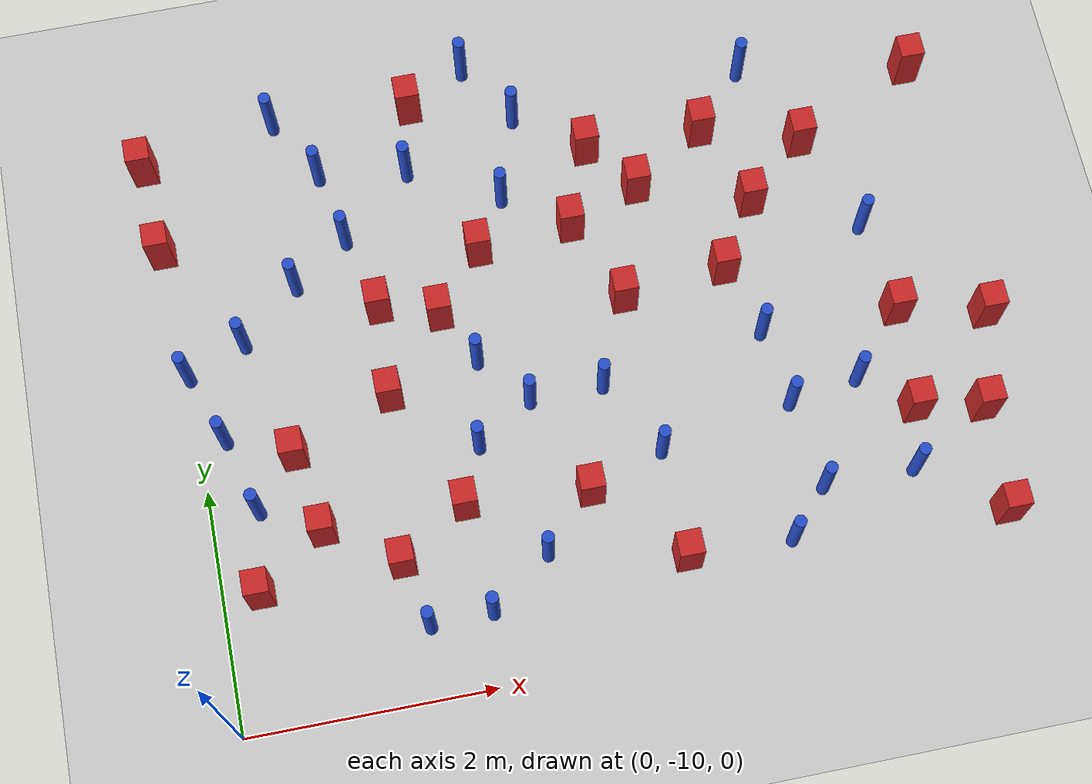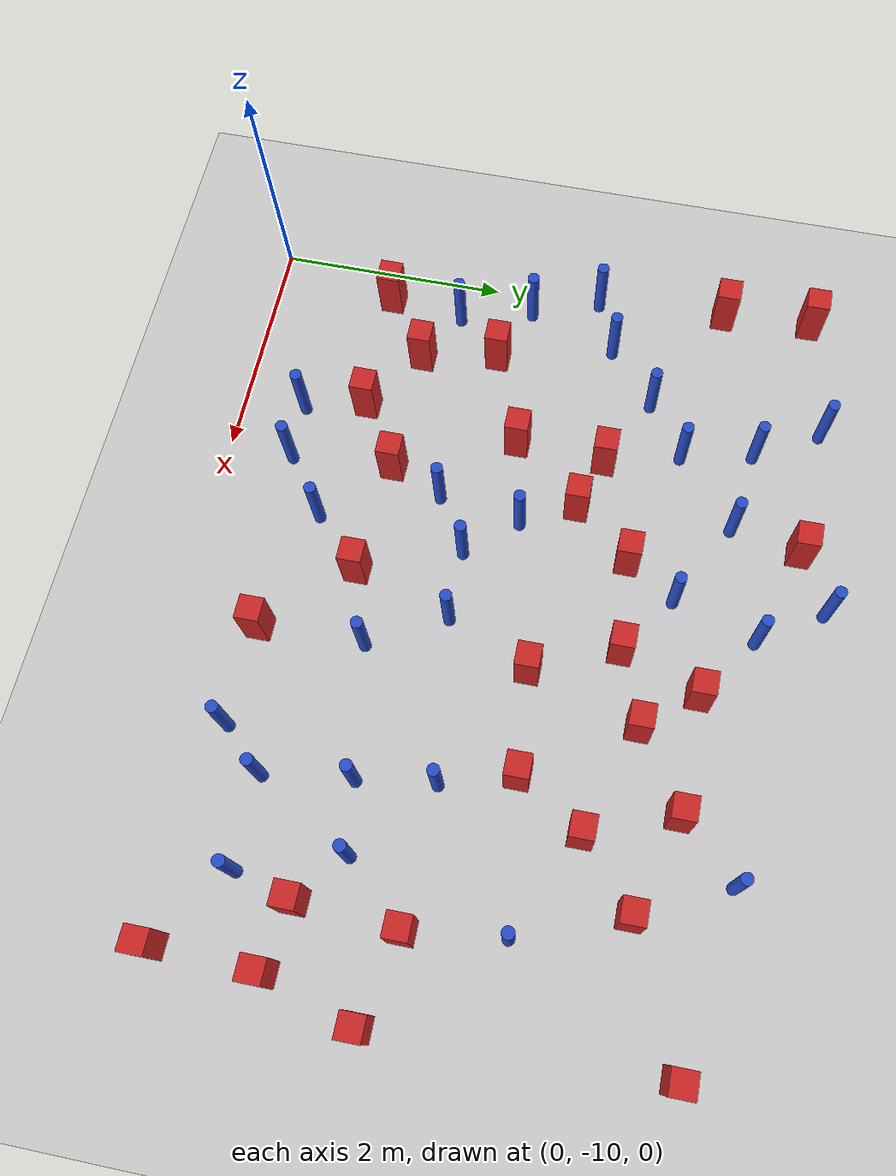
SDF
<sdf version="1.6">
 <world name="default">
  <model name="ground_plane">
   <static>1</static>
   <link name="link">
    <collision name="collision">
     <geometry><plane><normal>0 0 1</normal><size>100 100</size></plane></geometry>
     <surface><friction><ode><mu>100</mu><mu2>50</mu2></ode></friction></surface>
    </collision>
    <visual name="visual">
     <cast_shadows>0</cast_shadows>
     <geometry><plane><normal>0 0 1</normal><size>100 100</size></plane></geometry>
     <material>
      <ambient>1.0 1.0 1.0 1.0</ambient>
      <diffuse>0.8 0.8 0.8 1.0</diffuse>
      <specular>0.01 0.01 0.01 1.000000</specular>
     </material>
    </visual>
   </link>
  </model>
  <model name="pole_obstacle1">
   <static>true</static>
   <pose>5.66179896076 -6.79059327364 -9.47619616065e-06 5.49618799737e-07 2.36310414037e-07 -1.55090534814e-07</pose>
   <link name="link">
    <pose>0 0 0.3 0 -0 0</pose>
    <inertial>
     <mass>1</mass>
     <inertia><ixx>0.145833</ixx><ixy>0</ixy><ixz>0</ixz><iyy>0.145833</iyy><iyz>0</iyz><izz>0.125</izz></inertia>
    </inertial>
    <collision name="collision">
     <geometry><cylinder><radius>0.05</radius><length>.6</length></cylinder></geometry>
    </collision>
    <visual name="visual">
     <geometry><cylinder><radius>0.05</radius><length>.6</length></cylinder></geometry>
     <material>
      <script><name>Gazebo/Blue</name><uri>file://media/materials/scripts/gazebo.material</uri></script>
     </material>
    </visual>
   </link>
  </model>
  <model name="pole_obstacle5">
   <static>true</static>
   <pose>2.66959242151 -7.77141818711 -9.47619616065e-06 5.49618799738e-07 2.3631041406e-07 -1.55090534801e-07</pose>
   <link name="link">
    <pose>0 0 0.3 0 -0 0</pose>
    <inertial>
     <mass>1</mass>
     <inertia><ixx>0.145833</ixx><ixy>0</ixy><ixz>0</ixz><iyy>0.145833</iyy><iyz>0</iyz><izz>0.125</izz></inertia>
    </inertial>
    <collision name="collision">
     <geometry><cylinder><radius>0.05</radius><length>.6</length></cylinder></geometry>
    </collision>
    <visual name="visual">
     <geometry><cylinder><radius>0.05</radius><length>.6</length></cylinder></geometry>
     <material>
      <script><name>Gazebo/Blue</name><uri>file://media/materials/scripts/gazebo.material</uri></script>
     </material>
    </visual>
   </link>
  </model>
  <model name="square_post_obstacle8">
   <static>true</static>
   <pose>4.80758696736 -6.39304158506 -6.11067671241e-07 -5.50515727128e-06 -8.79689657224e-07 2.37013304536e-05</pose>
   <link name="link">
    <pose>0 0 0.25 0 -0 0</pose>
    <inertial>
     <mass>100</mass>
     <inertia>
      <ixx>0.166667</ixx>
      <ixy>0</ixy>
      <ixz>0</ixz>
      <iyy>0.166667</iyy>
      <iyz>0</iyz>
      <izz>0.166667</izz>
     </inertia>
    </inertial>
    <collision name="collision"><geometry><box><size>.2 .2 .5</size></box></geometry></collision>
    <visual name="visual">
     <geometry><box><size>.2 .2 .5</size></box></geometry>
     <material>
      <script><name>Gazebo/Red</name><uri>file://media/materials/scripts/gazebo.material</uri></script>
     </material>
    </visual>
   </link>
  </model>
  <model name="square_post_obstacle9">
   <static>true</static>
   <pose>6.23985523837 -8.52428699699 -6.11067671241e-07 -5.50515727128e-06 -8.79689657224e-07 2.37013304536e-05</pose>
   <link name="link">
    <pose>0 0 0.25 0 -0 0</pose>
    <inertial>
     <mass>100</mass>
     <inertia>
      <ixx>0.166667</ixx>
      <ixy>0</ixy>
      <ixz>0</ixz>
      <iyy>0.166667</iyy>
      <iyz>0</iyz>
      <izz>0.166667</izz>
     </inertia>
    </inertial>
    <collision name="collision"><geometry><box><size>.2 .2 .5</size></box></geometry></collision>
    <visual name="visual">
     <geometry><box><size>.2 .2 .5</size></box></geometry>
     <material>
      <script><name>Gazebo/Red</name><uri>file://media/materials/scripts/gazebo.material</uri></script>
     </material>
    </visual>
   </link>
  </model>
  <model name="square_post_obstacle11">
   <static>true</static>
   <pose>0.307046380626 -8.9206067691 -6.11067671241e-07 -5.50515727128e-06 -8.79689657224e-07 2.37013304536e-05</pose>
   <link name="link">
    <pose>0 0 0.25 0 -0 0</pose>
    <inertial>
     <mass>100</mass>
     <inertia>
      <ixx>0.166667</ixx>
      <ixy>0</ixy>
      <ixz>0</ixz>
      <iyy>0.166667</iyy>
      <iyz>0</iyz>
      <izz>0.166667</izz>
     </inertia>
    </inertial>
    <collision name="collision"><geometry><box><size>.2 .2 .5</size></box></geometry></collision>
    <visual name="visual">
     <geometry><box><size>.2 .2 .5</size></box></geometry>
     <material>
      <script><name>Gazebo/Red</name><uri>file://media/materials/scripts/gazebo.material</uri></script>
     </material>
    </visual>
   </link>
  </model>
  <model name="square_post_obstacle18">
   <static>true</static>
   <pose>-0.0803372727893 -5.90458669172 -6.11067671241e-07 -5.50515727128e-06 -8.79689657224e-07 2.37013304536e-05</pose>
   <link name="link">
    <pose>0 0 0.25 0 -0 0</pose>
    <inertial>
     <mass>100</mass>
     <inertia>
      <ixx>0.166667</ixx>
      <ixy>0</ixy>
      <ixz>0</ixz>
      <iyy>0.166667</iyy>
      <iyz>0</iyz>
      <izz>0.166667</izz>
     </inertia>
    </inertial>
    <collision name="collision"><geometry><box><size>.2 .2 .5</size></box></geometry></collision>
    <visual name="visual">
     <geometry><box><size>.2 .2 .5</size></box></geometry>
     <material>
      <script><name>Gazebo/Red</name><uri>file://media/materials/scripts/gazebo.material</uri></script>
     </material>
    </visual>
   </link>
  </model>
  <model name="square_post_obstacle25">
   <static>true</static>
   <pose>6.38921994989 -5.43267940847 -6.11067671241e-07 -5.50515727128e-06 -8.79689657224e-07 2.37013304536e-05</pose>
   <link name="link">
    <pose>0 0 0.25 0 -0 0</pose>
    <inertial>
     <mass>100</mass>
     <inertia>
      <ixx>0.166667</ixx>
      <ixy>0</ixy>
      <ixz>0</ixz>
      <iyy>0.166667</iyy>
      <iyz>0</iyz>
      <izz>0.166667</izz>
     </inertia>
    </inertial>
    <collision name="collision"><geometry><box><size>.2 .2 .5</size></box></geometry></collision>
    <visual name="visual">
     <geometry><box><size>.2 .2 .5</size></box></geometry>
     <material>
      <script><name>Gazebo/Red</name><uri>file://media/materials/scripts/gazebo.material</uri></script>
     </material>
    </visual>
   </link>
  </model>
  <model name="pole_obstacle20">
   <static>true</static>
   <pose>2.5683901474 -9.04571818254 -9.4761961606e-06 5.49618799729e-07 2.36310414e-07 -1.55090534824e-07</pose>
   <link name="link">
    <pose>0 0 0.3 0 -0 0</pose>
    <inertial>
     <mass>1</mass>
     <inertia><ixx>0.145833</ixx><ixy>0</ixy><ixz>0</ixz><iyy>0.145833</iyy><iyz>0</iyz><izz>0.125</izz></inertia>
    </inertial>
    <collision name="collision">
     <geometry><cylinder><radius>0.05</radius><length>.6</length></cylinder></geometry>
    </collision>
    <visual name="visual">
     <geometry><cylinder><radius>0.05</radius><length>.6</length></cylinder></geometry>
     <material>
      <script><name>Gazebo/Blue</name><uri>file://media/materials/scripts/gazebo.material</uri></script>
     </material>
    </visual>
   </link>
  </model>
  <model name="pole_obstacle23">
   <static>true</static>
   <pose>0.986134185562 -4.91660921578 -9.47619616065e-06 5.49618799737e-07 2.36310414071e-07 -1.55090534793e-07</pose>
   <link name="link">
    <pose>0 0 0.3 0 -0 0</pose>
    <inertial>
     <mass>1</mass>
     <inertia><ixx>0.145833</ixx><ixy>0</ixy><ixz>0</ixz><iyy>0.145833</iyy><iyz>0</iyz><izz>0.125</izz></inertia>
    </inertial>
    <collision name="collision">
     <geometry><cylinder><radius>0.05</radius><length>.6</length></cylinder></geometry>
    </collision>
    <visual name="visual">
     <geometry><cylinder><radius>0.05</radius><length>.6</length></cylinder></geometry>
     <material>
      <script><name>Gazebo/Blue</name><uri>file://media/materials/scripts/gazebo.material</uri></script>
     </material>
    </visual>
   </link>
  </model>
  <model name="pole_obstacle27">
   <static>true</static>
   <pose>0.209955426424 -7.63241775122 -9.47619616065e-06 5.49618799737e-07 2.36310414069e-07 -1.55090534795e-07</pose>
   <link name="link">
    <pose>0 0 0.3 0 -0 0</pose>
    <inertial>
     <mass>1</mass>
     <inertia><ixx>0.145833</ixx><ixy>0</ixy><ixz>0</ixz><iyy>0.145833</iyy><iyz>0</iyz><izz>0.125</izz></inertia>
    </inertial>
    <collision name="collision">
     <geometry><cylinder><radius>0.05</radius><length>.6</length></cylinder></geometry>
    </collision>
    <visual name="visual">
     <geometry><cylinder><radius>0.05</radius><length>.6</length></cylinder></geometry>
     <material>
      <script><name>Gazebo/Blue</name><uri>file://media/materials/scripts/gazebo.material</uri></script>
     </material>
    </visual>
   </link>
  </model>
  <model name="pole_obstacle33">
   <static>true</static>
   <pose>1.43009298654 -6.09198085319 -9.47619616065e-06 5.49618799737e-07 2.36310414061e-07 -1.550905348e-07</pose>
   <link name="link">
    <pose>0 0 0.3 0 -0 0</pose>
    <inertial>
     <mass>1</mass>
     <inertia><ixx>0.145833</ixx><ixy>0</ixy><ixz>0</ixz><iyy>0.145833</iyy><iyz>0</iyz><izz>0.125</izz></inertia>
    </inertial>
    <collision name="collision">
     <geometry><cylinder><radius>0.05</radius><length>.6</length></cylinder></geometry>
    </collision>
    <visual name="visual">
     <geometry><cylinder><radius>0.05</radius><length>.6</length></cylinder></geometry>
     <material>
      <script><name>Gazebo/Blue</name><uri>file://media/materials/scripts/gazebo.material</uri></script>
     </material>
    </visual>
   </link>
  </model>
  <model name="pole_obstacle49">
   <static>true</static>
   <pose>2.03362345856 -5.57477525214 -9.47619616065e-06 5.49618799737e-07 2.36310414059e-07 -1.55090534802e-07</pose>
   <link name="link">
    <pose>0 0 0.3 0 -0 0</pose>
    <inertial>
     <mass>1</mass>
     <inertia><ixx>0.145833</ixx><ixy>0</ixy><ixz>0</ixz><iyy>0.145833</iyy><iyz>0</iyz><izz>0.125</izz></inertia>
    </inertial>
    <collision name="collision">
     <geometry><cylinder><radius>0.05</radius><length>.6</length></cylinder></geometry>
    </collision>
    <visual name="visual">
     <geometry><cylinder><radius>0.05</radius><length>.6</length></cylinder></geometry>
     <material>
      <script><name>Gazebo/Blue</name><uri>file://media/materials/scripts/gazebo.material</uri></script>
     </material>
    </visual>
   </link>
  </model>
  <model name="square_post_obstacle51">
   <static>true</static>
   <pose>-0.128348704137 -5.12030381424 -6.11067671241e-07 -5.50515727128e-06 -8.79689657224e-07 2.37013304536e-05</pose>
   <link name="link">
    <pose>0 0 0.25 0 -0 0</pose>
    <inertial>
     <mass>100</mass>
     <inertia>
      <ixx>0.166667</ixx>
      <ixy>0</ixy>
      <ixz>0</ixz>
      <iyy>0.166667</iyy>
      <iyz>0</iyz>
      <izz>0.166667</izz>
     </inertia>
    </inertial>
    <collision name="collision"><geometry><box><size>.2 .2 .5</size></box></geometry></collision>
    <visual name="visual">
     <geometry><box><size>.2 .2 .5</size></box></geometry>
     <material>
      <script><name>Gazebo/Red</name><uri>file://media/materials/scripts/gazebo.material</uri></script>
     </material>
    </visual>
   </link>
  </model>
  <model name="square_post_obstacle55">
   <static>true</static>
   <pose>5.75974953399 -7.57785732044 -6.11067671241e-07 -5.50515727128e-06 -8.79689657224e-07 2.37013304536e-05</pose>
   <link name="link">
    <pose>0 0 0.25 0 -0 0</pose>
    <inertial>
     <mass>100</mass>
     <inertia>
      <ixx>0.166667</ixx>
      <ixy>0</ixy>
      <ixz>0</ixz>
      <iyy>0.166667</iyy>
      <iyz>0</iyz>
      <izz>0.166667</izz>
     </inertia>
    </inertial>
    <collision name="collision"><geometry><box><size>.2 .2 .5</size></box></geometry></collision>
    <visual name="visual">
     <geometry><box><size>.2 .2 .5</size></box></geometry>
     <material>
      <script><name>Gazebo/Red</name><uri>file://media/materials/scripts/gazebo.material</uri></script>
     </material>
    </visual>
   </link>
  </model>
  <model name="square_post_obstacle60">
   <static>true</static>
   <pose>0.862520866878 -8.51575672926 -6.11067671241e-07 -5.50515727128e-06 -8.79689657224e-07 2.37013304536e-05</pose>
   <link name="link">
    <pose>0 0 0.25 0 -0 0</pose>
    <inertial>
     <mass>100</mass>
     <inertia>
      <ixx>0.166667</ixx>
      <ixy>0</ixy>
      <ixz>0</ixz>
      <iyy>0.166667</iyy>
      <iyz>0</iyz>
      <izz>0.166667</izz>
     </inertia>
    </inertial>
    <collision name="collision"><geometry><box><size>.2 .2 .5</size></box></geometry></collision>
    <visual name="visual">
     <geometry><box><size>.2 .2 .5</size></box></geometry>
     <material>
      <script><name>Gazebo/Red</name><uri>file://media/materials/scripts/gazebo.material</uri></script>
     </material>
    </visual>
   </link>
  </model>
  <model name="pole_obstacle58">
   <static>true</static>
   <pose>5.30329893135 -8.10025174429 -9.47619616065e-06 5.49618799737e-07 2.36310414065e-07 -1.55090534796e-07</pose>
   <link name="link">
    <pose>0 0 0.3 0 -0 0</pose>
    <inertial>
     <mass>1</mass>
     <inertia><ixx>0.145833</ixx><ixy>0</ixy><ixz>0</ixz><iyy>0.145833</iyy><iyz>0</iyz><izz>0.125</izz></inertia>
    </inertial>
    <collision name="collision">
     <geometry><cylinder><radius>0.05</radius><length>.6</length></cylinder></geometry>
    </collision>
    <visual name="visual">
     <geometry><cylinder><radius>0.05</radius><length>.6</length></cylinder></geometry>
     <material>
      <script><name>Gazebo/Blue</name><uri>file://media/materials/scripts/gazebo.material</uri></script>
     </material>
    </visual>
   </link>
  </model>
  <model name="square_post_obstacle69">
   <static>true</static>
   <pose>4.45360802988 -6.95198359458 -6.11067671241e-07 -5.50515727128e-06 -8.79689657224e-07 2.37013304536e-05</pose>
   <link name="link">
    <pose>0 0 0.25 0 -0 0</pose>
    <inertial>
     <mass>100</mass>
     <inertia>
      <ixx>0.166667</ixx>
      <ixy>0</ixy>
      <ixz>0</ixz>
      <iyy>0.166667</iyy>
      <iyz>0</iyz>
      <izz>0.166667</izz>
     </inertia>
    </inertial>
    <collision name="collision"><geometry><box><size>.2 .2 .5</size></box></geometry></collision>
    <visual name="visual">
     <geometry><box><size>.2 .2 .5</size></box></geometry>
     <material>
      <script><name>Gazebo/Red</name><uri>file://media/materials/scripts/gazebo.material</uri></script>
     </material>
    </visual>
   </link>
  </model>
  <model name="pole_obstacle80">
   <static>true</static>
   <pose>2.06226800926 -9.42349726661 -9.4761961606e-06 5.49618799729e-07 2.36310414e-07 -1.55090534824e-07</pose>
   <link name="link">
    <pose>0 0 0.3 0 -0 0</pose>
    <inertial>
     <mass>1</mass>
     <inertia><ixx>0.145833</ixx><ixy>0</ixy><ixz>0</ixz><iyy>0.145833</iyy><iyz>0</iyz><izz>0.125</izz></inertia>
    </inertial>
    <collision name="collision">
     <geometry><cylinder><radius>0.05</radius><length>.6</length></cylinder></geometry>
    </collision>
    <visual name="visual">
     <geometry><cylinder><radius>0.05</radius><length>.6</length></cylinder></geometry>
     <material>
      <script><name>Gazebo/Blue</name><uri>file://media/materials/scripts/gazebo.material</uri></script>
     </material>
    </visual>
   </link>
  </model>
  <model name="square_post_obstacle82">
   <static>true</static>
   <pose>3.28850844236 -6.32740684868 -6.11067671241e-07 -5.50515727128e-06 -8.79689657224e-07 2.37013304536e-05</pose>
   <link name="link">
    <pose>0 0 0.25 0 -0 0</pose>
    <inertial>
     <mass>100</mass>
     <inertia>
      <ixx>0.166667</ixx>
      <ixy>0</ixy>
      <ixz>0</ixz>
      <iyy>0.166667</iyy>
      <iyz>0</iyz>
      <izz>0.166667</izz>
     </inertia>
    </inertial>
    <collision name="collision"><geometry><box><size>.2 .2 .5</size></box></geometry></collision>
    <visual name="visual">
     <geometry><box><size>.2 .2 .5</size></box></geometry>
     <material>
      <script><name>Gazebo/Red</name><uri>file://media/materials/scripts/gazebo.material</uri></script>
     </material>
    </visual>
   </link>
  </model>
  <model name="pole_obstacle90">
   <static>true</static>
   <pose>4.82449201634 -8.93319348665 -9.47619616065e-06 5.49618799737e-07 2.36310414065e-07 -1.55090534796e-07</pose>
   <link name="link">
    <pose>0 0 0.3 0 -0 0</pose>
    <inertial>
     <mass>1</mass>
     <inertia><ixx>0.145833</ixx><ixy>0</ixy><ixz>0</ixz><iyy>0.145833</iyy><iyz>0</iyz><izz>0.125</izz></inertia>
    </inertial>
    <collision name="collision">
     <geometry><cylinder><radius>0.05</radius><length>.6</length></cylinder></geometry>
    </collision>
    <visual name="visual">
     <geometry><cylinder><radius>0.05</radius><length>.6</length></cylinder></geometry>
     <material>
      <script><name>Gazebo/Blue</name><uri>file://media/materials/scripts/gazebo.material</uri></script>
     </material>
    </visual>
   </link>
  </model>
  <model name="pole_obstacle92">
   <static>true</static>
   <pose>3.27262101611 -7.7585749514 -9.47619616065e-06 5.49618799738e-07 2.3631041406e-07 -1.55090534801e-07</pose>
   <link name="link">
    <pose>0 0 0.3 0 -0 0</pose>
    <inertial>
     <mass>1</mass>
     <inertia><ixx>0.145833</ixx><ixy>0</ixy><ixz>0</ixz><iyy>0.145833</iyy><iyz>0</iyz><izz>0.125</izz></inertia>
    </inertial>
    <collision name="collision">
     <geometry><cylinder><radius>0.05</radius><length>.6</length></cylinder></geometry>
    </collision>
    <visual name="visual">
     <geometry><cylinder><radius>0.05</radius><length>.6</length></cylinder></geometry>
     <material>
      <script><name>Gazebo/Blue</name><uri>file://media/materials/scripts/gazebo.material</uri></script>
     </material>
    </visual>
   </link>
  </model>
  <model name="square_post_obstacle95">
   <static>true</static>
   <pose>2.08170708889 -6.89609192453 -6.11067671241e-07 -5.50515727128e-06 -8.79689657224e-07 2.37013304536e-05</pose>
   <link name="link">
    <pose>0 0 0.25 0 -0 0</pose>
    <inertial>
     <mass>100</mass>
     <inertia>
      <ixx>0.166667</ixx>
      <ixy>0</ixy>
      <ixz>0</ixz>
      <iyy>0.166667</iyy>
      <iyz>0</iyz>
      <izz>0.166667</izz>
     </inertia>
    </inertial>
    <collision name="collision"><geometry><box><size>.2 .2 .5</size></box></geometry></collision>
    <visual name="visual">
     <geometry><box><size>.2 .2 .5</size></box></geometry>
     <material>
      <script><name>Gazebo/Red</name><uri>file://media/materials/scripts/gazebo.material</uri></script>
     </material>
    </visual>
   </link>
  </model>
  <model name="square_post_obstacle96">
   <static>true</static>
   <pose>1.99747273629 -8.52713294584 -6.11067671241e-07 -5.50515727128e-06 -8.79689657224e-07 2.37013304536e-05</pose>
   <link name="link">
    <pose>0 0 0.25 0 -0 0</pose>
    <inertial>
     <mass>100</mass>
     <inertia>
      <ixx>0.166667</ixx>
      <ixy>0</ixy>
      <ixz>0</ixz>
      <iyy>0.166667</iyy>
      <iyz>0</iyz>
      <izz>0.166667</izz>
     </inertia>
    </inertial>
    <collision name="collision"><geometry><box><size>.2 .2 .5</size></box></geometry></collision>
    <visual name="visual">
     <geometry><box><size>.2 .2 .5</size></box></geometry>
     <material>
      <script><name>Gazebo/Red</name><uri>file://media/materials/scripts/gazebo.material</uri></script>
     </material>
    </visual>
   </link>
  </model>
  <model name="pole_obstacle109">
   <static>true</static>
   <pose>5.57205867409 -8.92852461398 -9.47619616065e-06 5.49618799737e-07 2.36310414065e-07 -1.55090534796e-07</pose>
   <link name="link">
    <pose>0 0 0.3 0 -0 0</pose>
    <inertial>
     <mass>1</mass>
     <inertia><ixx>0.145833</ixx><ixy>0</ixy><ixz>0</ixz><iyy>0.145833</iyy><iyz>0</iyz><izz>0.125</izz></inertia>
    </inertial>
    <collision name="collision">
     <geometry><cylinder><radius>0.05</radius><length>.6</length></cylinder></geometry>
    </collision>
    <visual name="visual">
     <geometry><cylinder><radius>0.05</radius><length>.6</length></cylinder></geometry>
     <material>
      <script><name>Gazebo/Blue</name><uri>file://media/materials/scripts/gazebo.material</uri></script>
     </material>
    </visual>
   </link>
  </model>
  <model name="pole_obstacle111">
   <static>true</static>
   <pose>3.62420640409 -8.3909383435 -9.4761961606e-06 5.49618799729e-07 2.36310414e-07 -1.55090534824e-07</pose>
   <link name="link">
    <pose>0 0 0.3 0 -0 0</pose>
    <inertial>
     <mass>1</mass>
     <inertia><ixx>0.145833</ixx><ixy>0</ixy><ixz>0</ixz><iyy>0.145833</iyy><iyz>0</iyz><izz>0.125</izz></inertia>
    </inertial>
    <collision name="collision">
     <geometry><cylinder><radius>0.05</radius><length>.6</length></cylinder></geometry>
    </collision>
    <visual name="visual">
     <geometry><cylinder><radius>0.05</radius><length>.6</length></cylinder></geometry>
     <material>
      <script><name>Gazebo/Blue</name><uri>file://media/materials/scripts/gazebo.material</uri></script>
     </material>
    </visual>
   </link>
  </model>
  <model name="pole_obstacle112">
   <static>true</static>
   <pose>3.00108476693 -5.25389282526 -9.47619616065e-06 5.49618799738e-07 2.3631041406e-07 -1.55090534801e-07</pose>
   <link name="link">
    <pose>0 0 0.3 0 -0 0</pose>
    <inertial>
     <mass>1</mass>
     <inertia><ixx>0.145833</ixx><ixy>0</ixy><ixz>0</ixz><iyy>0.145833</iyy><iyz>0</iyz><izz>0.125</izz></inertia>
    </inertial>
    <collision name="collision">
     <geometry><cylinder><radius>0.05</radius><length>.6</length></cylinder></geometry>
    </collision>
    <visual name="visual">
     <geometry><cylinder><radius>0.05</radius><length>.6</length></cylinder></geometry>
     <material>
      <script><name>Gazebo/Blue</name><uri>file://media/materials/scripts/gazebo.material</uri></script>
     </material>
    </visual>
   </link>
  </model>
  <model name="pole_obstacle114">
   <static>true</static>
   <pose>2.6563253212 -4.71757319948 -9.47619616065e-06 5.49618799738e-07 2.3631041406e-07 -1.55090534801e-07</pose>
   <link name="link">
    <pose>0 0 0.3 0 -0 0</pose>
    <inertial>
     <mass>1</mass>
     <inertia><ixx>0.145833</ixx><ixy>0</ixy><ixz>0</ixz><iyy>0.145833</iyy><iyz>0</iyz><izz>0.125</izz></inertia>
    </inertial>
    <collision name="collision">
     <geometry><cylinder><radius>0.05</radius><length>.6</length></cylinder></geometry>
    </collision>
    <visual name="visual">
     <geometry><cylinder><radius>0.05</radius><length>.6</length></cylinder></geometry>
     <material>
      <script><name>Gazebo/Blue</name><uri>file://media/materials/scripts/gazebo.material</uri></script>
     </material>
    </visual>
   </link>
  </model>
  <model name="square_post_obstacle103">
   <static>true</static>
   <pose>6.20690998564 -9.39334396113 -6.11067671241e-07 -5.50515727128e-06 -8.79689657224e-07 2.37013304536e-05</pose>
   <link name="link">
    <pose>0 0 0.25 0 -0 0</pose>
    <inertial>
     <mass>100</mass>
     <inertia>
      <ixx>0.166667</ixx>
      <ixy>0</ixy>
      <ixz>0</ixz>
      <iyy>0.166667</iyy>
      <iyz>0</iyz>
      <izz>0.166667</izz>
     </inertia>
    </inertial>
    <collision name="collision"><geometry><box><size>.2 .2 .5</size></box></geometry></collision>
    <visual name="visual">
     <geometry><box><size>.2 .2 .5</size></box></geometry>
     <material>
      <script><name>Gazebo/Red</name><uri>file://media/materials/scripts/gazebo.material</uri></script>
     </material>
    </visual>
   </link>
  </model>
  <model name="square_post_obstacle106">
   <static>true</static>
   <pose>5.70094761663 -8.42600681786 -6.11067671241e-07 -5.50515727128e-06 -8.79689657224e-07 2.37013304536e-05</pose>
   <link name="link">
    <pose>0 0 0.25 0 -0 0</pose>
    <inertial>
     <mass>100</mass>
     <inertia>
      <ixx>0.166667</ixx>
      <ixy>0</ixy>
      <ixz>0</ixz>
      <iyy>0.166667</iyy>
      <iyz>0</iyz>
      <izz>0.166667</izz>
     </inertia>
    </inertial>
    <collision name="collision"><geometry><box><size>.2 .2 .5</size></box></geometry></collision>
    <visual name="visual">
     <geometry><box><size>.2 .2 .5</size></box></geometry>
     <material>
      <script><name>Gazebo/Red</name><uri>file://media/materials/scripts/gazebo.material</uri></script>
     </material>
    </visual>
   </link>
  </model>
  <model name="pole_obstacle123">
   <static>true</static>
   <pose>4.97740928548 -5.18638989705 -9.47619616065e-06 5.49618799737e-07 2.36310414037e-07 -1.55090534814e-07</pose>
   <link name="link">
    <pose>0 0 0.3 0 -0 0</pose>
    <inertial>
     <mass>1</mass>
     <inertia><ixx>0.145833</ixx><ixy>0</ixy><ixz>0</ixz><iyy>0.145833</iyy><iyz>0</iyz><izz>0.125</izz></inertia>
    </inertial>
    <collision name="collision">
     <geometry><cylinder><radius>0.05</radius><length>.6</length></cylinder></geometry>
    </collision>
    <visual name="visual">
     <geometry><cylinder><radius>0.05</radius><length>.6</length></cylinder></geometry>
     <material>
      <script><name>Gazebo/Blue</name><uri>file://media/materials/scripts/gazebo.material</uri></script>
     </material>
    </visual>
   </link>
  </model>
  <model name="pole_obstacle127">
   <static>true</static>
   <pose>0.474908887314 -6.84517762339 -9.47619616065e-06 5.49618799737e-07 2.36310414066e-07 -1.55090534795e-07</pose>
   <link name="link">
    <pose>0 0 0.3 0 -0 0</pose>
    <inertial>
     <mass>1</mass>
     <inertia><ixx>0.145833</ixx><ixy>0</ixy><ixz>0</ixz><iyy>0.145833</iyy><iyz>0</iyz><izz>0.125</izz></inertia>
    </inertial>
    <collision name="collision">
     <geometry><cylinder><radius>0.05</radius><length>.6</length></cylinder></geometry>
    </collision>
    <visual name="visual">
     <geometry><cylinder><radius>0.05</radius><length>.6</length></cylinder></geometry>
     <material>
      <script><name>Gazebo/Blue</name><uri>file://media/materials/scripts/gazebo.material</uri></script>
     </material>
    </visual>
   </link>
  </model>
  <model name="square_post_obstacle121">
   <static>true</static>
   <pose>0.734810616494 -7.85233437974 -6.11067671241e-07 -5.50515727128e-06 -8.79689657224e-07 2.37013304536e-05</pose>
   <link name="link">
    <pose>0 0 0.25 0 -0 0</pose>
    <inertial>
     <mass>100</mass>
     <inertia>
      <ixx>0.166667</ixx>
      <ixy>0</ixy>
      <ixz>0</ixz>
      <iyy>0.166667</iyy>
      <iyz>0</iyz>
      <izz>0.166667</izz>
     </inertia>
    </inertial>
    <collision name="collision"><geometry><box><size>.2 .2 .5</size></box></geometry></collision>
    <visual name="visual">
     <geometry><box><size>.2 .2 .5</size></box></geometry>
     <material>
      <script><name>Gazebo/Red</name><uri>file://media/materials/scripts/gazebo.material</uri></script>
     </material>
    </visual>
   </link>
  </model>
  <model name="square_post_obstacle127">
   <static>true</static>
   <pose>3.63629457957 -9.27576361646 -6.11067671241e-07 -5.50515727128e-06 -8.79689657224e-07 2.37013304536e-05</pose>
   <link name="link">
    <pose>0 0 0.25 0 -0 0</pose>
    <inertial>
     <mass>100</mass>
     <inertia>
      <ixx>0.166667</ixx>
      <ixy>0</ixy>
      <ixz>0</ixz>
      <iyy>0.166667</iyy>
      <iyz>0</iyz>
      <izz>0.166667</izz>
     </inertia>
    </inertial>
    <collision name="collision"><geometry><box><size>.2 .2 .5</size></box></geometry></collision>
    <visual name="visual">
     <geometry><box><size>.2 .2 .5</size></box></geometry>
     <material>
      <script><name>Gazebo/Red</name><uri>file://media/materials/scripts/gazebo.material</uri></script>
     </material>
    </visual>
   </link>
  </model>
  <model name="pole_obstacle142">
   <static>true</static>
   <pose>4.72696433182 -8.19877668854 -9.47619616065e-06 5.49618799737e-07 2.36310414065e-07 -1.55090534796e-07</pose>
   <link name="link">
    <pose>0 0 0.3 0 -0 0</pose>
    <inertial>
     <mass>1</mass>
     <inertia><ixx>0.145833</ixx><ixy>0</ixy><ixz>0</ixz><iyy>0.145833</iyy><iyz>0</iyz><izz>0.125</izz></inertia>
    </inertial>
    <collision name="collision">
     <geometry><cylinder><radius>0.05</radius><length>.6</length></cylinder></geometry>
    </collision>
    <visual name="visual">
     <geometry><cylinder><radius>0.05</radius><length>.6</length></cylinder></geometry>
     <material>
      <script><name>Gazebo/Blue</name><uri>file://media/materials/scripts/gazebo.material</uri></script>
     </material>
    </visual>
   </link>
  </model>
  <model name="pole_obstacle148">
   <static>true</static>
   <pose>0.961645624186 -6.42426035813 -9.47619616065e-06 5.49618799737e-07 2.36310414071e-07 -1.55090534793e-07</pose>
   <link name="link">
    <pose>0 0 0.3 0 -0 0</pose>
    <inertial>
     <mass>1</mass>
     <inertia><ixx>0.145833</ixx><ixy>0</ixy><ixz>0</ixz><iyy>0.145833</iyy><iyz>0</iyz><izz>0.125</izz></inertia>
    </inertial>
    <collision name="collision">
     <geometry><cylinder><radius>0.05</radius><length>.6</length></cylinder></geometry>
    </collision>
    <visual name="visual">
     <geometry><cylinder><radius>0.05</radius><length>.6</length></cylinder></geometry>
     <material>
      <script><name>Gazebo/Blue</name><uri>file://media/materials/scripts/gazebo.material</uri></script>
     </material>
    </visual>
   </link>
  </model>
  <model name="square_post_obstacle147">
   <static>true</static>
   <pose>3.5917043117 -7.03722471426 -6.11067671241e-07 -5.50515727128e-06 -8.79689657224e-07 2.37013304536e-05</pose>
   <link name="link">
    <pose>0 0 0.25 0 -0 0</pose>
    <inertial>
     <mass>100</mass>
     <inertia>
      <ixx>0.166667</ixx>
      <ixy>0</ixy>
      <ixz>0</ixz>
      <iyy>0.166667</iyy>
      <iyz>0</iyz>
      <izz>0.166667</izz>
     </inertia>
    </inertial>
    <collision name="collision"><geometry><box><size>.2 .2 .5</size></box></geometry></collision>
    <visual name="visual">
     <geometry><box><size>.2 .2 .5</size></box></geometry>
     <material>
      <script><name>Gazebo/Red</name><uri>file://media/materials/scripts/gazebo.material</uri></script>
     </material>
    </visual>
   </link>
  </model>
  <model name="square_post_obstacle154">
   <static>true</static>
   <pose>3.54771692091 -5.65223252167 -6.11067671241e-07 -5.50515727128e-06 -8.79689657224e-07 2.37013304536e-05</pose>
   <link name="link">
    <pose>0 0 0.25 0 -0 0</pose>
    <inertial>
     <mass>100</mass>
     <inertia>
      <ixx>0.166667</ixx>
      <ixy>0</ixy>
      <ixz>0</ixz>
      <iyy>0.166667</iyy>
      <iyz>0</iyz>
      <izz>0.166667</izz>
     </inertia>
    </inertial>
    <collision name="collision"><geometry><box><size>.2 .2 .5</size></box></geometry></collision>
    <visual name="visual">
     <geometry><box><size>.2 .2 .5</size></box></geometry>
     <material>
      <script><name>Gazebo/Red</name><uri>file://media/materials/scripts/gazebo.material</uri></script>
     </material>
    </visual>
   </link>
  </model>
  <model name="square_post_obstacle158">
   <static>true</static>
   <pose>2.99637893346 -8.60674402719 -6.11067671241e-07 -5.50515727128e-06 -8.79689657224e-07 2.37013304536e-05</pose>
   <link name="link">
    <pose>0 0 0.25 0 -0 0</pose>
    <inertial>
     <mass>100</mass>
     <inertia>
      <ixx>0.166667</ixx>
      <ixy>0</ixy>
      <ixz>0</ixz>
      <iyy>0.166667</iyy>
      <iyz>0</iyz>
      <izz>0.166667</izz>
     </inertia>
    </inertial>
    <collision name="collision"><geometry><box><size>.2 .2 .5</size></box></geometry></collision>
    <visual name="visual">
     <geometry><box><size>.2 .2 .5</size></box></geometry>
     <material>
      <script><name>Gazebo/Red</name><uri>file://media/materials/scripts/gazebo.material</uri></script>
     </material>
    </visual>
   </link>
  </model>
  <model name="square_post_obstacle162">
   <static>true</static>
   <pose>2.49699084589 -6.39639776863 -6.11067671241e-07 -5.50515727128e-06 -8.79689657224e-07 2.37013304536e-05</pose>
   <link name="link">
    <pose>0 0 0.25 0 -0 0</pose>
    <inertial>
     <mass>100</mass>
     <inertia>
      <ixx>0.166667</ixx>
      <ixy>0</ixy>
      <ixz>0</ixz>
      <iyy>0.166667</iyy>
      <iyz>0</iyz>
      <izz>0.166667</izz>
     </inertia>
    </inertial>
    <collision name="collision"><geometry><box><size>.2 .2 .5</size></box></geometry></collision>
    <visual name="visual">
     <geometry><box><size>.2 .2 .5</size></box></geometry>
     <material>
      <script><name>Gazebo/Red</name><uri>file://media/materials/scripts/gazebo.material</uri></script>
     </material>
    </visual>
   </link>
  </model>
  <model name="pole_obstacle173">
   <static>true</static>
   <pose>0.387307057035 -8.26726253458 -9.47619616065e-06 5.49618799737e-07 2.36310414031e-07 -1.55090534818e-07</pose>
   <link name="link">
    <pose>0 0 0.3 0 -0 0</pose>
    <inertial>
     <mass>1</mass>
     <inertia><ixx>0.145833</ixx><ixy>0</ixy><ixz>0</ixz><iyy>0.145833</iyy><iyz>0</iyz><izz>0.125</izz></inertia>
    </inertial>
    <collision name="collision">
     <geometry><cylinder><radius>0.05</radius><length>.6</length></cylinder></geometry>
    </collision>
    <visual name="visual">
     <geometry><cylinder><radius>0.05</radius><length>.6</length></cylinder></geometry>
     <material>
      <script><name>Gazebo/Blue</name><uri>file://media/materials/scripts/gazebo.material</uri></script>
     </material>
    </visual>
   </link>
  </model>
  <model name="pole_obstacle180">
   <static>true</static>
   <pose>1.5615765517 -9.43663225901 -9.47619616065e-06 5.49618799737e-07 2.36310414046e-07 -1.55090534809e-07</pose>
   <link name="link">
    <pose>0 0 0.3 0 -0 0</pose>
    <inertial>
     <mass>1</mass>
     <inertia><ixx>0.145833</ixx><ixy>0</ixy><ixz>0</ixz><iyy>0.145833</iyy><iyz>0</iyz><izz>0.125</izz></inertia>
    </inertial>
    <collision name="collision">
     <geometry><cylinder><radius>0.05</radius><length>.6</length></cylinder></geometry>
    </collision>
    <visual name="visual">
     <geometry><cylinder><radius>0.05</radius><length>.6</length></cylinder></geometry>
     <material>
      <script><name>Gazebo/Blue</name><uri>file://media/materials/scripts/gazebo.material</uri></script>
     </material>
    </visual>
   </link>
  </model>
  <model name="pole_obstacle187">
   <static>true</static>
   <pose>4.63737091955 -7.55584478522 -9.47619616065e-06 5.49618799737e-07 2.36310414037e-07 -1.55090534814e-07</pose>
   <link name="link">
    <pose>0 0 0.3 0 -0 0</pose>
    <inertial>
     <mass>1</mass>
     <inertia><ixx>0.145833</ixx><ixy>0</ixy><ixz>0</ixz><iyy>0.145833</iyy><iyz>0</iyz><izz>0.125</izz></inertia>
    </inertial>
    <collision name="collision">
     <geometry><cylinder><radius>0.05</radius><length>.6</length></cylinder></geometry>
    </collision>
    <visual name="visual">
     <geometry><cylinder><radius>0.05</radius><length>.6</length></cylinder></geometry>
     <material>
      <script><name>Gazebo/Blue</name><uri>file://media/materials/scripts/gazebo.material</uri></script>
     </material>
    </visual>
   </link>
  </model>
  <model name="square_post_obstacle179">
   <static>true</static>
   <pose>1.60267756262 -6.73906339809 -6.11067671241e-07 -5.50515727128e-06 -8.79689657224e-07 2.37013304536e-05</pose>
   <link name="link">
    <pose>0 0 0.25 0 -0 0</pose>
    <inertial>
     <mass>100</mass>
     <inertia>
      <ixx>0.166667</ixx>
      <ixy>0</ixy>
      <ixz>0</ixz>
      <iyy>0.166667</iyy>
      <iyz>0</iyz>
      <izz>0.166667</izz>
     </inertia>
    </inertial>
    <collision name="collision"><geometry><box><size>.2 .2 .5</size></box></geometry></collision>
    <visual name="visual">
     <geometry><box><size>.2 .2 .5</size></box></geometry>
     <material>
      <script><name>Gazebo/Red</name><uri>file://media/materials/scripts/gazebo.material</uri></script>
     </material>
    </visual>
   </link>
  </model>
  <model name="square_post_obstacle182">
   <static>true</static>
   <pose>3.89412910198 -6.08879208203 -6.11067671241e-07 -5.50515727128e-06 -8.79689657224e-07 2.37013304536e-05</pose>
   <link name="link">
    <pose>0 0 0.25 0 -0 0</pose>
    <inertial>
     <mass>100</mass>
     <inertia>
      <ixx>0.166667</ixx>
      <ixy>0</ixy>
      <ixz>0</ixz>
      <iyy>0.166667</iyy>
      <iyz>0</iyz>
      <izz>0.166667</izz>
     </inertia>
    </inertial>
    <collision name="collision"><geometry><box><size>.2 .2 .5</size></box></geometry></collision>
    <visual name="visual">
     <geometry><box><size>.2 .2 .5</size></box></geometry>
     <material>
      <script><name>Gazebo/Red</name><uri>file://media/materials/scripts/gazebo.material</uri></script>
     </material>
    </visual>
   </link>
  </model>
  <model name="square_post_obstacle184">
   <static>true</static>
   <pose>6.47301314877 -7.74530180883 -6.11067671241e-07 -5.50515727128e-06 -8.79689657224e-07 2.37013304536e-05</pose>
   <link name="link">
    <pose>0 0 0.25 0 -0 0</pose>
    <inertial>
     <mass>100</mass>
     <inertia>
      <ixx>0.166667</ixx>
      <ixy>0</ixy>
      <ixz>0</ixz>
      <iyy>0.166667</iyy>
      <iyz>0</iyz>
      <izz>0.166667</izz>
     </inertia>
    </inertial>
    <collision name="collision"><geometry><box><size>.2 .2 .5</size></box></geometry></collision>
    <visual name="visual">
     <geometry><box><size>.2 .2 .5</size></box></geometry>
     <material>
      <script><name>Gazebo/Red</name><uri>file://media/materials/scripts/gazebo.material</uri></script>
     </material>
    </visual>
   </link>
  </model>
  <model name="pole_obstacle192">
   <static>true</static>
   <pose>2.31334460552 -7.35199433587 -9.47619616065e-06 5.49618799738e-07 2.3631041406e-07 -1.55090534801e-07</pose>
   <link name="link">
    <pose>0 0 0.3 0 -0 0</pose>
    <inertial>
     <mass>1</mass>
     <inertia><ixx>0.145833</ixx><ixy>0</ixy><ixz>0</ixz><iyy>0.145833</iyy><iyz>0</iyz><izz>0.125</izz></inertia>
    </inertial>
    <collision name="collision">
     <geometry><cylinder><radius>0.05</radius><length>.6</length></cylinder></geometry>
    </collision>
    <visual name="visual">
     <geometry><cylinder><radius>0.05</radius><length>.6</length></cylinder></geometry>
     <material>
      <script><name>Gazebo/Blue</name><uri>file://media/materials/scripts/gazebo.material</uri></script>
     </material>
    </visual>
   </link>
  </model>
  <model name="square_post_obstacle191">
   <static>true</static>
   <pose>1.56464044813 -7.51203425456 -6.11067671241e-07 -5.50515727128e-06 -8.79689657224e-07 2.37013304536e-05</pose>
   <link name="link">
    <pose>0 0 0.25 0 -0 0</pose>
    <inertial>
     <mass>100</mass>
     <inertia>
      <ixx>0.166667</ixx>
      <ixy>0</ixy>
      <ixz>0</ixz>
      <iyy>0.166667</iyy>
      <iyz>0</iyz>
      <izz>0.166667</izz>
     </inertia>
    </inertial>
    <collision name="collision"><geometry><box><size>.2 .2 .5</size></box></geometry></collision>
    <visual name="visual">
     <geometry><box><size>.2 .2 .5</size></box></geometry>
     <material>
      <script><name>Gazebo/Red</name><uri>file://media/materials/scripts/gazebo.material</uri></script>
     </material>
    </visual>
   </link>
  </model>
  <model name="square_post_obstacle192">
   <static>true</static>
   <pose>1.43448012093 -8.89255463243 -6.11067671241e-07 -5.50515727128e-06 -8.79689657224e-07 2.37013304536e-05</pose>
   <link name="link">
    <pose>0 0 0.25 0 -0 0</pose>
    <inertial>
     <mass>100</mass>
     <inertia>
      <ixx>0.166667</ixx>
      <ixy>0</ixy>
      <ixz>0</ixz>
      <iyy>0.166667</iyy>
      <iyz>0</iyz>
      <izz>0.166667</izz>
     </inertia>
    </inertial>
    <collision name="collision"><geometry><box><size>.2 .2 .5</size></box></geometry></collision>
    <visual name="visual">
     <geometry><box><size>.2 .2 .5</size></box></geometry>
     <material>
      <script><name>Gazebo/Red</name><uri>file://media/materials/scripts/gazebo.material</uri></script>
     </material>
    </visual>
   </link>
  </model>
  <model name="pole_obstacle200">
   <static>true</static>
   <pose>2.77265278133 -5.9659332155 -9.47619616065e-06 5.49618799738e-07 2.3631041406e-07 -1.55090534801e-07</pose>
   <link name="link">
    <pose>0 0 0.3 0 -0 0</pose>
    <inertial>
     <mass>1</mass>
     <inertia><ixx>0.145833</ixx><ixy>0</ixy><ixz>0</ixz><iyy>0.145833</iyy><iyz>0</iyz><izz>0.125</izz></inertia>
    </inertial>
    <collision name="collision">
     <geometry><cylinder><radius>0.05</radius><length>.6</length></cylinder></geometry>
    </collision>
    <visual name="visual">
     <geometry><cylinder><radius>0.05</radius><length>.6</length></cylinder></geometry>
     <material>
      <script><name>Gazebo/Blue</name><uri>file://media/materials/scripts/gazebo.material</uri></script>
     </material>
    </visual>
   </link>
  </model>
  <model name="pole_obstacle204">
   <static>true</static>
   <pose>2.1973978613 -8.06879578618 -9.4761961606e-06 5.49618799729e-07 2.36310414e-07 -1.55090534824e-07</pose>
   <link name="link">
    <pose>0 0 0.3 0 -0 0</pose>
    <inertial>
     <mass>1</mass>
     <inertia><ixx>0.145833</ixx><ixy>0</ixy><ixz>0</ixz><iyy>0.145833</iyy><iyz>0</iyz><izz>0.125</izz></inertia>
    </inertial>
    <collision name="collision">
     <geometry><cylinder><radius>0.05</radius><length>.6</length></cylinder></geometry>
    </collision>
    <visual name="visual">
     <geometry><cylinder><radius>0.05</radius><length>.6</length></cylinder></geometry>
     <material>
      <script><name>Gazebo/Blue</name><uri>file://media/materials/scripts/gazebo.material</uri></script>
     </material>
    </visual>
   </link>
  </model>
  <model name="pole_obstacle211">
   <static>true</static>
   <pose>4.48620427143 -9.30356851248 -9.47619616065e-06 5.49618799737e-07 2.36310414065e-07 -1.55090534796e-07</pose>
   <link name="link">
    <pose>0 0 0.3 0 -0 0</pose>
    <inertial>
     <mass>1</mass>
     <inertia><ixx>0.145833</ixx><ixy>0</ixy><ixz>0</ixz><iyy>0.145833</iyy><iyz>0</iyz><izz>0.125</izz></inertia>
    </inertial>
    <collision name="collision">
     <geometry><cylinder><radius>0.05</radius><length>.6</length></cylinder></geometry>
    </collision>
    <visual name="visual">
     <geometry><cylinder><radius>0.05</radius><length>.6</length></cylinder></geometry>
     <material>
      <script><name>Gazebo/Blue</name><uri>file://media/materials/scripts/gazebo.material</uri></script>
     </material>
    </visual>
   </link>
  </model>
  <model name="pole_obstacle212">
   <static>true</static>
   <pose>-0.00897371942088 -7.0439150397 -9.47619616065e-06 5.49618799737e-07 2.36310414066e-07 -1.55090534798e-07</pose>
   <link name="link">
    <pose>0 0 0.3 0 -0 0</pose>
    <inertial>
     <mass>1</mass>
     <inertia><ixx>0.145833</ixx><ixy>0</ixy><ixz>0</ixz><iyy>0.145833</iyy><iyz>0</iyz><izz>0.125</izz></inertia>
    </inertial>
    <collision name="collision">
     <geometry><cylinder><radius>0.05</radius><length>.6</length></cylinder></geometry>
    </collision>
    <visual name="visual">
     <geometry><cylinder><radius>0.05</radius><length>.6</length></cylinder></geometry>
     <material>
      <script><name>Gazebo/Blue</name><uri>file://media/materials/scripts/gazebo.material</uri></script>
     </material>
    </visual>
   </link>
  </model>
  <model name="pole_obstacle213">
   <static>true</static>
   <pose>1.30014357939 -5.46878931159 -9.47619616065e-06 5.49618799737e-07 2.36310414061e-07 -1.550905348e-07</pose>
   <link name="link">
    <pose>0 0 0.3 0 -0 0</pose>
    <inertial>
     <mass>1</mass>
     <inertia><ixx>0.145833</ixx><ixy>0</ixy><ixz>0</ixz><iyy>0.145833</iyy><iyz>0</iyz><izz>0.125</izz></inertia>
    </inertial>
    <collision name="collision">
     <geometry><cylinder><radius>0.05</radius><length>.6</length></cylinder></geometry>
    </collision>
    <visual name="visual">
     <geometry><cylinder><radius>0.05</radius><length>.6</length></cylinder></geometry>
     <material>
      <script><name>Gazebo/Blue</name><uri>file://media/materials/scripts/gazebo.material</uri></script>
     </material>
    </visual>
   </link>
  </model>
  <model name="square_post_obstacle203">
   <static>true</static>
   <pose>4.52956269935 -5.67300083152 -6.11067671241e-07 -5.50515727128e-06 -8.79689657224e-07 2.37013304536e-05</pose>
   <link name="link">
    <pose>0 0 0.25 0 -0 0</pose>
    <inertial>
     <mass>100</mass>
     <inertia>
      <ixx>0.166667</ixx>
      <ixy>0</ixy>
      <ixz>0</ixz>
      <iyy>0.166667</iyy>
      <iyz>0</iyz>
      <izz>0.166667</izz>
     </inertia>
    </inertial>
    <collision name="collision"><geometry><box><size>.2 .2 .5</size></box></geometry></collision>
    <visual name="visual">
     <geometry><box><size>.2 .2 .5</size></box></geometry>
     <material>
      <script><name>Gazebo/Red</name><uri>file://media/materials/scripts/gazebo.material</uri></script>
     </material>
    </visual>
   </link>
  </model>
  <model name="square_post_obstacle220">
   <static>true</static>
   <pose>5.3364799502 -5.93022002312 -6.11067671241e-07 -5.50515727128e-06 -8.79689657224e-07 2.37013304536e-05</pose>
   <link name="link">
    <pose>0 0 0.25 0 -0 0</pose>
    <inertial>
     <mass>100</mass>
     <inertia>
      <ixx>0.166667</ixx>
      <ixy>0</ixy>
      <ixz>0</ixz>
      <iyy>0.166667</iyy>
      <iyz>0</iyz>
      <izz>0.166667</izz>
     </inertia>
    </inertial>
    <collision name="collision"><geometry><box><size>.2 .2 .5</size></box></geometry></collision>
    <visual name="visual">
     <geometry><box><size>.2 .2 .5</size></box></geometry>
     <material>
      <script><name>Gazebo/Red</name><uri>file://media/materials/scripts/gazebo.material</uri></script>
     </material>
    </visual>
   </link>
  </model>
  <model name="square_post_obstacle225">
   <static>true</static>
   <pose>2.1507199502 -4.98140002312 -6.11067671241e-07 -5.50515727128e-06 -8.79689657224e-07 2.37013304536e-05</pose>
   <link name="link">
    <pose>0 0 0.25 0 -0 0</pose>
    <inertial>
     <mass>100</mass>
     <inertia>
      <ixx>0.166667</ixx>
      <ixy>0</ixy>
      <ixz>0</ixz>
      <iyy>0.166667</iyy>
      <iyz>0</iyz>
      <izz>0.166667</izz>
     </inertia>
    </inertial>
    <collision name="collision"><geometry><box><size>.2 .2 .5</size></box></geometry></collision>
    <visual name="visual">
     <geometry><box><size>.2 .2 .5</size></box></geometry>
     <material>
      <script><name>Gazebo/Red</name><uri>file://media/materials/scripts/gazebo.material</uri></script>
     </material>
    </visual>
   </link>
  </model>
 </world>
</sdf>
